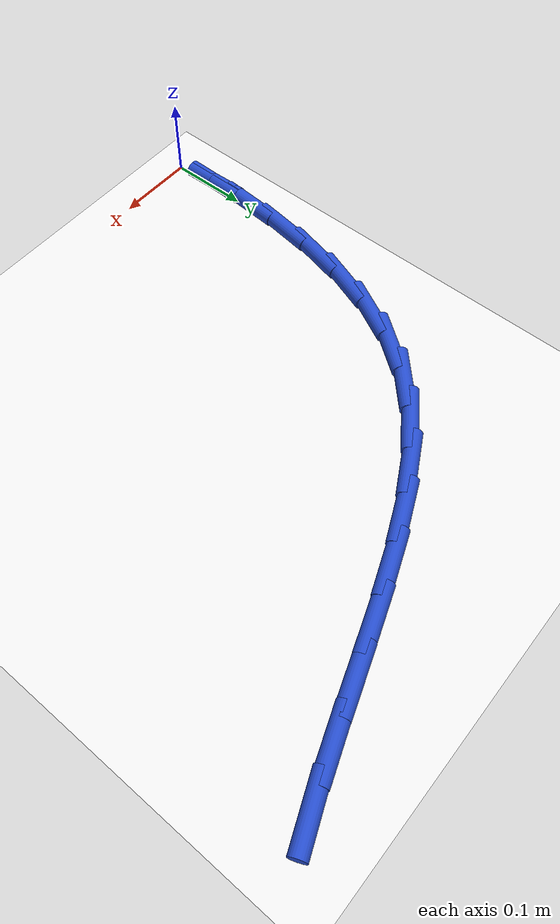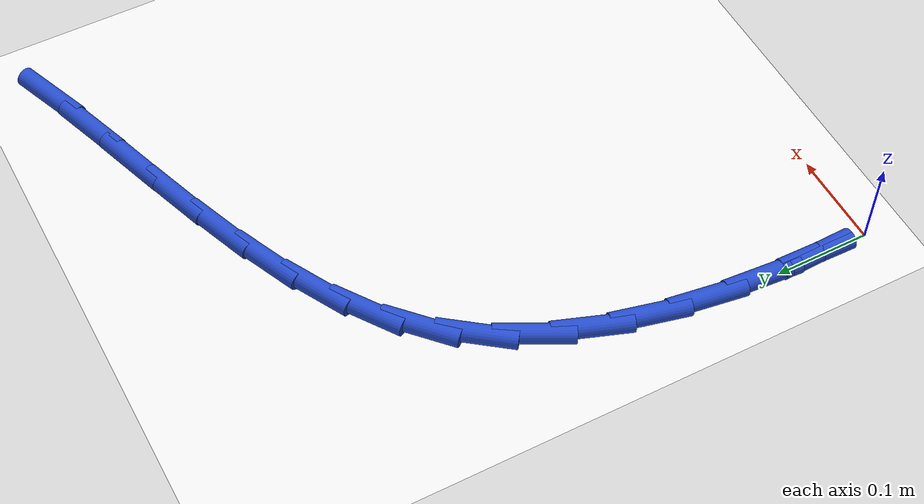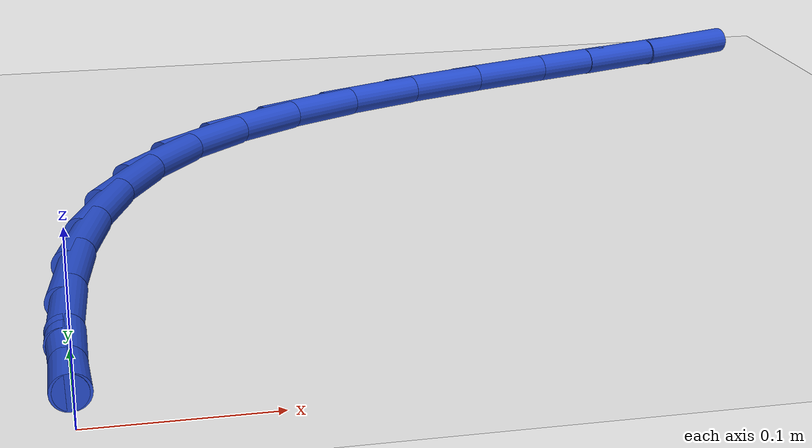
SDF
<sdf version="1.6">
 <world name="default">
  <model name="ground_plane">
   <static>1</static>
   <link name="link">
    <collision name="collision">
     <geometry><plane><normal>0 0 1</normal><size>100 100</size></plane></geometry>
     <surface><friction><ode><mu>100</mu><mu2>50</mu2></ode></friction></surface>
    </collision>
    <visual name="visual">
     <cast_shadows>0</cast_shadows>
     <geometry><plane><normal>0 0 1</normal><size>100 100</size></plane></geometry>
     <material>
      <script><uri>file://media/materials/scripts/gazebo.material</uri><name>Gazebo/WhiteGlow</name></script>
     </material>
    </visual>
   </link>
  </model>
  <model name="line">
   <link name="link_1">
    <pose>-0.0014482822844550166 0.0603947784526387 0.01 0 1.57 1.553900163379401</pose>
    <collision name="collision">
     <geometry><cylinder><radius>0.01</radius><length>0.08</length></cylinder></geometry>
    </collision>
    <visual name="visual">
     <material>
      <script><name>Gazebo/Blue</name><uri>file://media/materials/scripts/gazebo.material</uri></script>
     </material>
     <geometry><cylinder><radius>0.01</radius><length>0.08</length></cylinder></geometry>
    </visual>
   </link>
   <link name="link_2">
    <pose>-0.00042740290458333956 0.12080980912698046 0.01 0 1.57 1.4995469914829243</pose>
    <collision name="collision">
     <geometry><cylinder><radius>0.01</radius><length>0.08</length></cylinder></geometry>
    </collision>
    <visual name="visual">
     <material>
      <script><name>Gazebo/Blue</name><uri>file://media/materials/scripts/gazebo.material</uri></script>
     </material>
     <geometry><cylinder><radius>0.01</radius><length>0.08</length></cylinder></geometry>
    </visual>
   </link>
   <link name="link_3">
    <pose>0.003823991763133144 0.1803780590002816 0.01 0 1.57 1.4292661213409839</pose>
    <collision name="collision">
     <geometry><cylinder><radius>0.01</radius><length>0.08</length></cylinder></geometry>
    </collision>
    <visual name="visual">
     <material>
      <script><name>Gazebo/Blue</name><uri>file://media/materials/scripts/gazebo.material</uri></script>
     </material>
     <geometry><cylinder><radius>0.01</radius><length>0.08</length></cylinder></geometry>
    </visual>
   </link>
   <link name="link_4">
    <pose>0.012067255342212547 0.23823249504979815 0.01 0 1.57 1.3398610520253216</pose>
    <collision name="collision">
     <geometry><cylinder><radius>0.01</radius><length>0.08</length></cylinder></geometry>
    </collision>
    <visual name="visual">
     <material>
      <script><name>Gazebo/Blue</name><uri>file://media/materials/scripts/gazebo.material</uri></script>
     </material>
     <geometry><cylinder><radius>0.01</radius><length>0.08</length></cylinder></geometry>
    </visual>
   </link>
   <link name="link_5">
    <pose>0.025063741456173013 0.2935060842527867 0.01 0 1.57 1.2277402085793172</pose>
    <collision name="collision">
     <geometry><cylinder><radius>0.01</radius><length>0.08</length></cylinder></geometry>
    </collision>
    <visual name="visual">
     <material>
      <script><name>Gazebo/Blue</name><uri>file://media/materials/scripts/gazebo.material</uri></script>
     </material>
     <geometry><cylinder><radius>0.01</radius><length>0.08</length></cylinder></geometry>
    </visual>
   </link>
   <link name="link_6">
    <pose>0.04357480372853265 0.34533179358650323 0.01 0 1.57 1.089929720037065</pose>
    <collision name="collision">
     <geometry><cylinder><radius>0.01</radius><length>0.08</length></cylinder></geometry>
    </collision>
    <visual name="visual">
     <material>
      <script><name>Gazebo/Blue</name><uri>file://media/materials/scripts/gazebo.material</uri></script>
     </material>
     <geometry><cylinder><radius>0.01</radius><length>0.08</length></cylinder></geometry>
    </visual>
   </link>
   <link name="link_7">
    <pose>0.06836179578280957 0.3928425900282041 0.01 0 1.57 0.9261226858212825</pose>
    <collision name="collision">
     <geometry><cylinder><radius>0.01</radius><length>0.08</length></cylinder></geometry>
    </collision>
    <visual name="visual">
     <material>
      <script><name>Gazebo/Blue</name><uri>file://media/materials/scripts/gazebo.material</uri></script>
     </material>
     <geometry><cylinder><radius>0.01</radius><length>0.08</length></cylinder></geometry>
    </visual>
   </link>
   <link name="link_8">
    <pose>0.10018605969218394 0.43517145095094184 0.01 0 1.57 0.7505717292814116</pose>
    <collision name="collision">
     <geometry><cylinder><radius>0.01</radius><length>0.08</length></cylinder></geometry>
    </collision>
    <visual name="visual">
     <material>
      <script><name>Gazebo/Blue</name><uri>file://media/materials/scripts/gazebo.material</uri></script>
     </material>
     <geometry><cylinder><radius>0.01</radius><length>0.08</length></cylinder></geometry>
    </visual>
   </link>
   <link name="link_9">
    <pose>0.13944064829590896 0.47178282972128 0.01 0 1.57 0.6039710030051992</pose>
    <collision name="collision">
     <geometry><cylinder><radius>0.01</radius><length>0.08</length></cylinder></geometry>
    </collision>
    <visual name="visual">
     <material>
      <script><name>Gazebo/Blue</name><uri>file://media/materials/scripts/gazebo.material</uri></script>
     </material>
     <geometry><cylinder><radius>0.01</radius><length>0.08</length></cylinder></geometry>
    </visual>
   </link>
   <link name="link_10">
    <pose>0.185182399845223 0.5033438297354479 0.01 0 1.57 0.4939126290468347</pose>
    <collision name="collision">
     <geometry><cylinder><radius>0.01</radius><length>0.08</length></cylinder></geometry>
    </collision>
    <visual name="visual">
     <material>
      <script><name>Gazebo/Blue</name><uri>file://media/materials/scripts/gazebo.material</uri></script>
     </material>
     <geometry><cylinder><radius>0.01</radius><length>0.08</length></cylinder></geometry>
    </visual>
   </link>
   <link name="link_11">
    <pose>0.23616520550820141 0.5307942196650123 0.01 0 1.57 0.41586747498312904</pose>
    <collision name="collision">
     <geometry><cylinder><radius>0.01</radius><length>0.08</length></cylinder></geometry>
    </collision>
    <visual name="visual">
     <material>
      <script><name>Gazebo/Blue</name><uri>file://media/materials/scripts/gazebo.material</uri></script>
     </material>
     <geometry><cylinder><radius>0.01</radius><length>0.08</length></cylinder></geometry>
    </visual>
   </link>
   <link name="link_12">
    <pose>0.29114295645291965 0.5550737681815409 0.01 0 1.57 0.3648469183188532</pose>
    <collision name="collision">
     <geometry><cylinder><radius>0.01</radius><length>0.08</length></cylinder></geometry>
    </collision>
    <visual name="visual">
     <material>
      <script><name>Gazebo/Blue</name><uri>file://media/materials/scripts/gazebo.material</uri></script>
     </material>
     <geometry><cylinder><radius>0.01</radius><length>0.08</length></cylinder></geometry>
    </visual>
   </link>
   <link name="link_13">
    <pose>0.3488695438474534 0.5771222439566007 0.01 0 1.57 0.3370795373727516</pose>
    <collision name="collision">
     <geometry><cylinder><radius>0.01</radius><length>0.08</length></cylinder></geometry>
    </collision>
    <visual name="visual">
     <material>
      <script><name>Gazebo/Blue</name><uri>file://media/materials/scripts/gazebo.material</uri></script>
     </material>
     <geometry><cylinder><radius>0.01</radius><length>0.08</length></cylinder></geometry>
    </visual>
   </link>
   <link name="link_14">
    <pose>0.40809885885987773 0.5978794156617588 0.01 0 1.57 0.33045467531488554</pose>
    <collision name="collision">
     <geometry><cylinder><radius>0.01</radius><length>0.08</length></cylinder></geometry>
    </collision>
    <visual name="visual">
     <material>
      <script><name>Gazebo/Blue</name><uri>file://media/materials/scripts/gazebo.material</uri></script>
     </material>
     <geometry><cylinder><radius>0.01</radius><length>0.08</length></cylinder></geometry>
    </visual>
   </link>
   <link name="link_15">
    <pose>0.4675847926582685 0.6182850519685829 0.01 0 1.57 0.34457380934153925</pose>
    <collision name="collision">
     <geometry><cylinder><radius>0.01</radius><length>0.08</length></cylinder></geometry>
    </collision>
    <visual name="visual">
     <material>
      <script><name>Gazebo/Blue</name><uri>file://media/materials/scripts/gazebo.material</uri></script>
     </material>
     <geometry><cylinder><radius>0.01</radius><length>0.08</length></cylinder></geometry>
    </visual>
   </link>
   <link name="link_16">
    <pose>0.5260812364107011 0.6392789215486397 0.01 0 1.57 0.3807750102335403</pose>
    <collision name="collision">
     <geometry><cylinder><radius>0.01</radius><length>0.08</length></cylinder></geometry>
    </collision>
    <visual name="visual">
     <material>
      <script><name>Gazebo/Blue</name><uri>file://media/materials/scripts/gazebo.material</uri></script>
     </material>
     <geometry><cylinder><radius>0.01</radius><length>0.08</length></cylinder></geometry>
    </visual>
   </link>
   <link name="link_141">
    <pose>-0.0016255364086861963 0.06050614237512695 0.01 0 1.57 -1.5439371447303432</pose>
    <collision name="collision">
     <geometry><cylinder><radius>0.01</radius><length>0.08</length></cylinder></geometry>
    </collision>
    <visual name="visual">
     <material>
      <script><name>Gazebo/Blue</name><uri>file://media/materials/scripts/gazebo.material</uri></script>
     </material>
     <geometry><cylinder><radius>0.01</radius><length>0.08</length></cylinder></geometry>
    </visual>
   </link>
  </model>
 </world>
</sdf>
